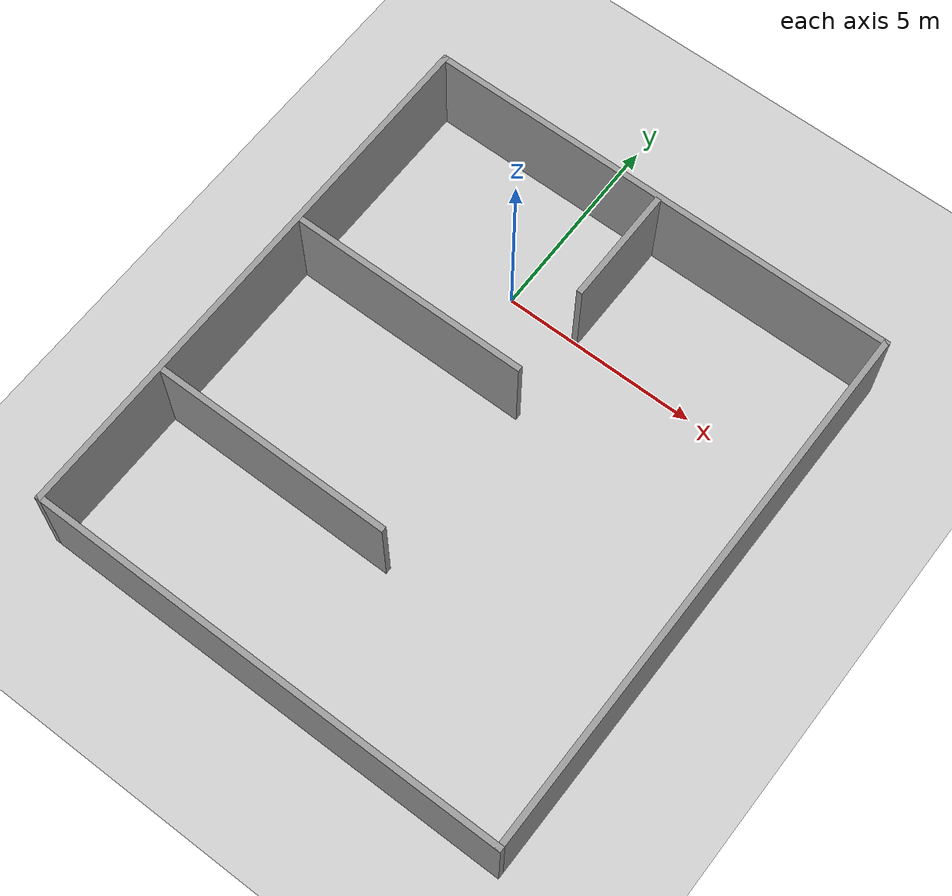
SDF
<sdf version="1.7">
 <world name="default">
  <light name="sun" type="directional">
   <pose>0 0 10 0 -0 0</pose>
   <diffuse>0.8 0.8 0.8 1</diffuse>
   <specular>0.2 0.2 0.2 1</specular>
   <attenuation>
    <range>1000</range>
    <constant>0.9</constant>
    <linear>0.01</linear>
    <quadratic>0.001</quadratic>
   </attenuation>
   <direction>-0.5 0.1 -0.9</direction>
   <spot><inner_angle>0</inner_angle><outer_angle>0</outer_angle><falloff>0</falloff></spot>
  </light>
  <model name="ground_plane">
   <static>1</static>
   <link name="link">
    <collision name="collision">
     <geometry><plane><normal>0 0 1</normal><size>100 100</size></plane></geometry>
     <surface>
      <contact><collide_bitmask>65535</collide_bitmask></contact>
      <friction><ode><mu>100</mu><mu2>50</mu2></ode></friction>
     </surface>
    </collision>
    <visual name="visual">
     <cast_shadows>0</cast_shadows>
     <geometry><plane><normal>0 0 1</normal><size>100 100</size></plane></geometry>
     <material>
      <script><uri>file://media/materials/scripts/gazebo.material</uri><name>Gazebo/Grey</name></script>
     </material>
    </visual>
   </link>
  </model>
  <gravity>0 0 -9.8</gravity>
  <magnetic_field>6e-06 2.3e-05 -4.2e-05</magnetic_field>
  <atmosphere type="adiabatic"/>
  <physics type="ode">
   <max_step_size>0.001</max_step_size>
   <real_time_factor>1</real_time_factor>
   <real_time_update_rate>1000</real_time_update_rate>
  </physics>
  <scene><ambient>0.4 0.4 0.4 1</ambient><background>0.7 0.7 0.7 1</background><shadows>1</shadows></scene>
  <spherical_coordinates>
   <surface_model>EARTH_WGS84</surface_model>
   <latitude_deg>0</latitude_deg>
   <longitude_deg>0</longitude_deg>
   <elevation>0</elevation>
   <heading_deg>0</heading_deg>
  </spherical_coordinates>
  <model name="rooms">
   <pose>1.76 -3.885 0 0 -0 0</pose>
   <link name="Wall_10">
    <collision name="Wall_10_Collision">
     <geometry><box><size>6.25 0.15 2.5</size></box></geometry>
     <pose>0 0 1.25 0 -0 0</pose>
    </collision>
    <visual name="Wall_10_Visual">
     <pose>0 0 1.25 0 -0 0</pose>
     <geometry><box><size>6.25 0.15 2.5</size></box></geometry>
     <material>
      <script><uri>file://media/materials/scripts/gazebo.material</uri><name>Gazebo/Grey</name></script>
      <ambient>1 1 1 1</ambient>
     </material>
     <meta><layer>0</layer></meta>
    </visual>
    <pose>-2.99239 -3.1044 0 0 -0 0</pose>
   </link>
   <link name="Wall_15">
    <collision name="Wall_15_Collision">
     <geometry><box><size>6.25 0.15 2.5</size></box></geometry>
     <pose>0 0 1.25 0 -0 0</pose>
    </collision>
    <visual name="Wall_15_Visual">
     <pose>0 0 1.25 0 -0 0</pose>
     <geometry><box><size>6.25 0.15 2.5</size></box></geometry>
     <material>
      <script><uri>file://media/materials/scripts/gazebo.material</uri><name>Gazebo/Grey</name></script>
      <ambient>1 1 1 1</ambient>
     </material>
     <meta><layer>0</layer></meta>
    </visual>
    <pose>-2.9756 1.58938 0 0 -0 0</pose>
   </link>
   <link name="Wall_17">
    <collision name="Wall_17_Collision">
     <geometry><box><size>3 0.15 2.5</size></box></geometry>
     <pose>0 0 1.25 0 -0 0</pose>
    </collision>
    <visual name="Wall_17_Visual">
     <pose>0 0 1.25 0 -0 0</pose>
     <geometry><box><size>3 0.15 2.5</size></box></geometry>
     <material>
      <script><uri>file://media/materials/scripts/gazebo.material</uri><name>Gazebo/Grey</name></script>
      <ambient>1 1 1 1</ambient>
     </material>
     <meta><layer>0</layer></meta>
    </visual>
    <pose>0.047245 5.37248 0 0 -0 -1.5708</pose>
   </link>
   <link name="Wall_4">
    <collision name="Wall_4_Collision">
     <geometry><box><size>12.25 0.15 2.5</size></box></geometry>
     <pose>0 0 1.25 0 -0 0</pose>
    </collision>
    <visual name="Wall_4_Visual">
     <pose>0 0 1.25 0 -0 0</pose>
     <geometry><box><size>12.25 0.15 2.5</size></box></geometry>
     <material>
      <script><uri>file://media/materials/scripts/gazebo.material</uri><name>Gazebo/Grey</name></script>
      <ambient>1 1 1 1</ambient>
     </material>
     <meta><layer>0</layer></meta>
    </visual>
    <pose>0 6.925 0 0 -0 0</pose>
   </link>
   <link name="Wall_5">
    <collision name="Wall_5_Collision">
     <geometry><box><size>14 0.15 2.5</size></box></geometry>
     <pose>0 0 1.25 0 -0 0</pose>
    </collision>
    <visual name="Wall_5_Visual">
     <pose>0 0 1.25 0 -0 0</pose>
     <geometry><box><size>14 0.15 2.5</size></box></geometry>
     <material>
      <script><uri>file://media/materials/scripts/gazebo.material</uri><name>Gazebo/Grey</name></script>
      <ambient>1 1 1 1</ambient>
     </material>
     <meta><layer>0</layer></meta>
    </visual>
    <pose>6.05 0 0 0 -0 -1.5708</pose>
   </link>
   <link name="Wall_6">
    <collision name="Wall_6_Collision">
     <geometry><box><size>12.25 0.15 2.5</size></box></geometry>
     <pose>0 0 1.25 0 -0 0</pose>
    </collision>
    <visual name="Wall_6_Visual">
     <pose>0 0 1.25 0 -0 0</pose>
     <geometry><box><size>12.25 0.15 2.5</size></box></geometry>
     <material>
      <script><uri>file://media/materials/scripts/gazebo.material</uri><name>Gazebo/Grey</name></script>
      <ambient>1 1 1 1</ambient>
     </material>
     <meta><layer>0</layer></meta>
    </visual>
    <pose>0 -6.925 0 0 -0 3.14159</pose>
   </link>
   <link name="Wall_7">
    <collision name="Wall_7_Collision">
     <geometry><box><size>14 0.15 2.5</size></box></geometry>
     <pose>0 0 1.25 0 -0 0</pose>
    </collision>
    <visual name="Wall_7_Visual">
     <pose>0 0 1.25 0 -0 0</pose>
     <geometry><box><size>14 0.15 2.5</size></box></geometry>
     <material>
      <script><uri>file://media/materials/scripts/gazebo.material</uri><name>Gazebo/Grey</name></script>
      <ambient>1 1 1 1</ambient>
     </material>
     <meta><layer>0</layer></meta>
    </visual>
    <pose>-6.05 0 0 0 -0 1.5708</pose>
   </link>
   <static>1</static>
  </model>
 </world>
</sdf>
